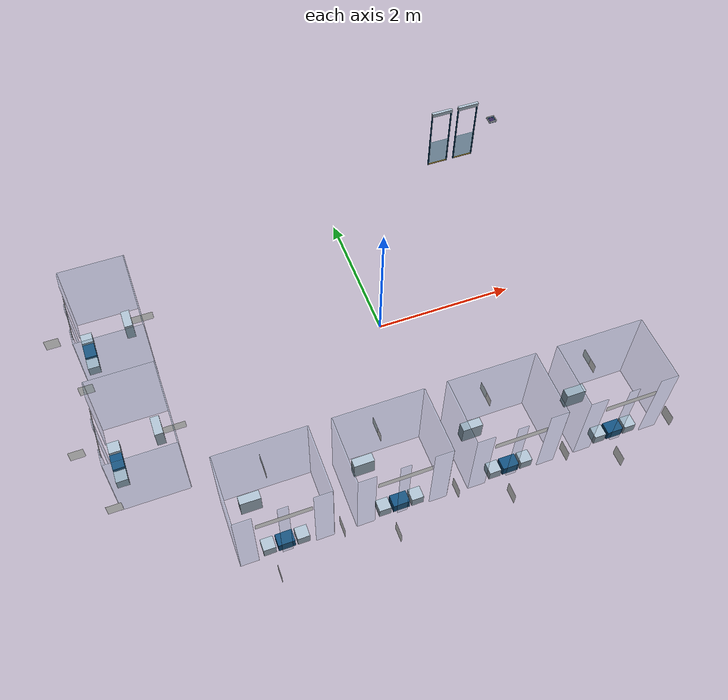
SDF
<sdf version="1.9">
 <world name="wafer_transport">
  <include>
   <uri>model://room_1_entry_door</uri>
   <name>room_1_entry_door</name>
   <pose>2.3386000000000005 2.7571999999999997 0.0 0 0 4.71238898038469</pose>
  </include>
  <include>
   <uri>model://room_1_exit_door</uri>
   <name>room_1_exit_door</name>
   <pose>1.8985999999999998 2.7571999999999997 0.0 0 0 4.71238898038469</pose>
  </include>
  <model name="room_5">
   <static>true</static>
   <link name="structure">
    <inertial>
     <mass>0.1</mass>
     <inertia>
      <ixx>0.00016666666666666672</ixx>
      <iyy>0.00016666666666666672</iyy>
      <izz>0.00016666666666666672</izz>
      <ixy>0</ixy>
      <ixz>0</ixz>
      <iyz>0</iyz>
     </inertia>
    </inertial>
    <visual name="glass_back">
     <pose>-3.2004 0.9144 0.6096 0 0 -1.5707963267948966</pose>
     <geometry><box><size>1.2192 0.012 1.2192</size></box></geometry>
     <material><ambient>.5 .75 .9 1</ambient><diffuse>.5 .75 .9 1</diffuse></material>
     <transparency>0.82</transparency>
    </visual>
    <collision name="glass_back_collision">
     <pose>-3.2004 0.9144 0.6096 0 0 -1.5707963267948966</pose>
     <geometry><box><size>1.2192 0.012 1.2192</size></box></geometry>
     <surface><friction><ode><mu>0.9</mu><mu2>0.9</mu2></ode></friction></surface>
    </collision>
    <visual name="glass_left">
     <pose>-3.6576 1.524 0.6096 0 0 -1.5707963267948966</pose>
     <geometry><box><size>0.012 0.9144 1.2192</size></box></geometry>
     <material><ambient>.5 .75 .9 1</ambient><diffuse>.5 .75 .9 1</diffuse></material>
     <transparency>0.82</transparency>
    </visual>
    <collision name="glass_left_collision">
     <pose>-3.6576 1.524 0.6096 0 0 -1.5707963267948966</pose>
     <geometry><box><size>0.012 0.9144 1.2192</size></box></geometry>
     <surface><friction><ode><mu>0.9</mu><mu2>0.9</mu2></ode></friction></surface>
    </collision>
    <visual name="glass_right">
     <pose>-3.6576 0.30479999999999996 0.6096 0 0 -1.5707963267948966</pose>
     <geometry><box><size>0.012 0.9144 1.2192</size></box></geometry>
     <material><ambient>.5 .75 .9 1</ambient><diffuse>.5 .75 .9 1</diffuse></material>
     <transparency>0.82</transparency>
    </visual>
    <collision name="glass_right_collision">
     <pose>-3.6576 0.30479999999999996 0.6096 0 0 -1.5707963267948966</pose>
     <geometry><box><size>0.012 0.9144 1.2192</size></box></geometry>
     <surface><friction><ode><mu>0.9</mu><mu2>0.9</mu2></ode></friction></surface>
    </collision>
    <visual name="glass_front_0">
     <pose>-4.1148 1.4054 0.6096 0 0 -1.5707963267948966</pose>
     <geometry><box><size>0.23720000000000002 0.012 1.2192</size></box></geometry>
     <material><ambient>.5 .75 .9 1</ambient><diffuse>.5 .75 .9 1</diffuse></material>
     <transparency>0.82</transparency>
    </visual>
    <collision name="glass_front_0_collision">
     <pose>-4.1148 1.4054 0.6096 0 0 -1.5707963267948966</pose>
     <geometry><box><size>0.23720000000000002 0.012 1.2192</size></box></geometry>
     <surface><friction><ode><mu>0.9</mu><mu2>0.9</mu2></ode></friction></surface>
    </collision>
    <visual name="glass_front_1">
     <pose>-4.1148 0.9144 0.6096 0 0 -1.5707963267948966</pose>
     <geometry><box><size>0.1352 0.012 1.2192</size></box></geometry>
     <material><ambient>.5 .75 .9 1</ambient><diffuse>.5 .75 .9 1</diffuse></material>
     <transparency>0.82</transparency>
    </visual>
    <collision name="glass_front_1_collision">
     <pose>-4.1148 0.9144 0.6096 0 0 -1.5707963267948966</pose>
     <geometry><box><size>0.1352 0.012 1.2192</size></box></geometry>
     <surface><friction><ode><mu>0.9</mu><mu2>0.9</mu2></ode></friction></surface>
    </collision>
    <visual name="glass_front_2">
     <pose>-4.1148 0.42339999999999994 0.6096 0 0 -1.5707963267948966</pose>
     <geometry><box><size>0.23720000000000002 0.012 1.2192</size></box></geometry>
     <material><ambient>.5 .75 .9 1</ambient><diffuse>.5 .75 .9 1</diffuse></material>
     <transparency>0.82</transparency>
    </visual>
    <collision name="glass_front_2_collision">
     <pose>-4.1148 0.42339999999999994 0.6096 0 0 -1.5707963267948966</pose>
     <geometry><box><size>0.23720000000000002 0.012 1.2192</size></box></geometry>
     <surface><friction><ode><mu>0.9</mu><mu2>0.9</mu2></ode></friction></surface>
    </collision>
    <visual name="process_stage">
     <pose>-4.0148 0.9144 0.077 0 0 -1.5707963267948966</pose>
     <geometry><box><size>0.22 0.16 0.154</size></box></geometry>
     <material><ambient>0.06 0.30 0.48 1</ambient><diffuse>0.06 0.30 0.48 1</diffuse></material>
    </visual>
    <collision name="process_stage_collision">
     <pose>-4.0148 0.9144 0.077 0 0 -1.5707963267948966</pose>
     <geometry><box><size>0.22 0.16 0.154</size></box></geometry>
     <surface><friction><ode><mu>0.9</mu><mu2>0.9</mu2></ode></friction></surface>
    </collision>
    <visual name="entry_handoff">
     <pose>-4.0148 1.1344 0.077 0 0 -1.5707963267948966</pose>
     <geometry><box><size>0.16 0.16 0.154</size></box></geometry>
     <material><ambient>0.65 0.72 0.78 1</ambient><diffuse>0.65 0.72 0.78 1</diffuse></material>
    </visual>
    <collision name="entry_handoff_collision">
     <pose>-4.0148 1.1344 0.077 0 0 -1.5707963267948966</pose>
     <geometry><box><size>0.16 0.16 0.154</size></box></geometry>
     <surface><friction><ode><mu>0.9</mu><mu2>0.9</mu2></ode></friction></surface>
    </collision>
    <visual name="exit_handoff">
     <pose>-4.0148 0.6944 0.077 0 0 -1.5707963267948966</pose>
     <geometry><box><size>0.16 0.16 0.154</size></box></geometry>
     <material><ambient>0.65 0.72 0.78 1</ambient><diffuse>0.65 0.72 0.78 1</diffuse></material>
    </visual>
    <collision name="exit_handoff_collision">
     <pose>-4.0148 0.6944 0.077 0 0 -1.5707963267948966</pose>
     <geometry><box><size>0.16 0.16 0.154</size></box></geometry>
     <surface><friction><ode><mu>0.9</mu><mu2>0.9</mu2></ode></friction></surface>
    </collision>
    <visual name="equipment">
     <pose>-3.4076 1.1844000000000001 0.14 0 0 -1.5707963267948966</pose>
     <geometry><box><size>0.28 0.12 0.28</size></box></geometry>
     <material><ambient>0.65 0.72 0.78 1</ambient><diffuse>0.65 0.72 0.78 1</diffuse></material>
    </visual>
    <collision name="equipment_collision">
     <pose>-3.4076 1.1844000000000001 0.14 0 0 -1.5707963267948966</pose>
     <geometry><box><size>0.28 0.12 0.28</size></box></geometry>
     <surface><friction><ode><mu>0.9</mu><mu2>0.9</mu2></ode></friction></surface>
    </collision>
    <visual name="entry_apriltag">
     <pose>-4.475 1.1144 0.27 1.5707963267948966 0 3.141592653589793</pose>
     <geometry><plane><normal>0 0 1</normal><size>0.2 0.2</size></plane></geometry>
     <material>
      <ambient>1 1 1 1</ambient>
      <diffuse>1 1 1 1</diffuse>
      <emissive>0.35 0.35 0.35 1</emissive>
      <pbr>
       <metal>
        <albedo_map>../textures/room_5_entry_apriltag.png</albedo_map>
        <metalness>0</metalness>
        <roughness>1</roughness>
       </metal>
      </pbr>
     </material>
     <cast_shadows>false</cast_shadows>
    </visual>
    <visual name="exit_apriltag">
     <pose>-4.1701999999999995 0.2144 0.27 1.5707963267948966 0 3.141592653589793</pose>
     <geometry><plane><normal>0 0 1</normal><size>0.2 0.2</size></plane></geometry>
     <material>
      <ambient>1 1 1 1</ambient>
      <diffuse>1 1 1 1</diffuse>
      <emissive>0.35 0.35 0.35 1</emissive>
      <pbr>
       <metal>
        <albedo_map>../textures/room_5_exit_apriltag.png</albedo_map>
        <metalness>0</metalness>
        <roughness>1</roughness>
       </metal>
      </pbr>
     </material>
     <cast_shadows>false</cast_shadows>
    </visual>
    <visual name="room_label">
     <pose>-4.1238 0.9144 0.98 1.5707963267948966 0 -1.5707963267948966</pose>
     <geometry><plane><normal>0 0 1</normal><size>0.7 0.1</size></plane></geometry>
     <material>
      <ambient>1 1 1 1</ambient>
      <diffuse>1 1 1 1</diffuse>
      <emissive>0.35 0.35 0.35 1</emissive>
      <pbr>
       <metal>
        <albedo_map>../textures/room_5_label.png</albedo_map>
        <metalness>0</metalness>
        <roughness>1</roughness>
       </metal>
      </pbr>
     </material>
     <cast_shadows>false</cast_shadows>
    </visual>
    <visual name="microalchemy_logo">
     <pose>-3.1904 0.9144 0.55 1.5707963267948966 0 0.0</pose>
     <geometry><plane><normal>0 0 1</normal><size>0.3 0.15</size></plane></geometry>
     <material>
      <ambient>1 1 1 1</ambient>
      <diffuse>1 1 1 1</diffuse>
      <emissive>0.35 0.35 0.35 1</emissive>
      <pbr>
       <metal>
        <albedo_map>../textures/microalchemy_logo.png</albedo_map>
        <metalness>0</metalness>
        <roughness>1</roughness>
       </metal>
      </pbr>
     </material>
     <cast_shadows>false</cast_shadows>
    </visual>
   </link>
  </model>
  <model name="room_6">
   <static>true</static>
   <link name="structure">
    <inertial>
     <mass>0.1</mass>
     <inertia>
      <ixx>0.00016666666666666672</ixx>
      <iyy>0.00016666666666666672</iyy>
      <izz>0.00016666666666666672</izz>
      <ixy>0</ixy>
      <ixz>0</ixz>
      <iyz>0</iyz>
     </inertia>
    </inertial>
    <visual name="glass_back">
     <pose>-3.2004 -0.9144 0.6096 0 0 -1.5707963267948966</pose>
     <geometry><box><size>1.2192 0.012 1.2192</size></box></geometry>
     <material><ambient>.5 .75 .9 1</ambient><diffuse>.5 .75 .9 1</diffuse></material>
     <transparency>0.82</transparency>
    </visual>
    <collision name="glass_back_collision">
     <pose>-3.2004 -0.9144 0.6096 0 0 -1.5707963267948966</pose>
     <geometry><box><size>1.2192 0.012 1.2192</size></box></geometry>
     <surface><friction><ode><mu>0.9</mu><mu2>0.9</mu2></ode></friction></surface>
    </collision>
    <visual name="glass_left">
     <pose>-3.6576 -0.30479999999999996 0.6096 0 0 -1.5707963267948966</pose>
     <geometry><box><size>0.012 0.9144 1.2192</size></box></geometry>
     <material><ambient>.5 .75 .9 1</ambient><diffuse>.5 .75 .9 1</diffuse></material>
     <transparency>0.82</transparency>
    </visual>
    <collision name="glass_left_collision">
     <pose>-3.6576 -0.30479999999999996 0.6096 0 0 -1.5707963267948966</pose>
     <geometry><box><size>0.012 0.9144 1.2192</size></box></geometry>
     <surface><friction><ode><mu>0.9</mu><mu2>0.9</mu2></ode></friction></surface>
    </collision>
    <visual name="glass_right">
     <pose>-3.6576 -1.524 0.6096 0 0 -1.5707963267948966</pose>
     <geometry><box><size>0.012 0.9144 1.2192</size></box></geometry>
     <material><ambient>.5 .75 .9 1</ambient><diffuse>.5 .75 .9 1</diffuse></material>
     <transparency>0.82</transparency>
    </visual>
    <collision name="glass_right_collision">
     <pose>-3.6576 -1.524 0.6096 0 0 -1.5707963267948966</pose>
     <geometry><box><size>0.012 0.9144 1.2192</size></box></geometry>
     <surface><friction><ode><mu>0.9</mu><mu2>0.9</mu2></ode></friction></surface>
    </collision>
    <visual name="glass_front_0">
     <pose>-4.1148 -0.42340000000000005 0.6096 0 0 -1.5707963267948966</pose>
     <geometry><box><size>0.23720000000000002 0.012 1.2192</size></box></geometry>
     <material><ambient>.5 .75 .9 1</ambient><diffuse>.5 .75 .9 1</diffuse></material>
     <transparency>0.82</transparency>
    </visual>
    <collision name="glass_front_0_collision">
     <pose>-4.1148 -0.42340000000000005 0.6096 0 0 -1.5707963267948966</pose>
     <geometry><box><size>0.23720000000000002 0.012 1.2192</size></box></geometry>
     <surface><friction><ode><mu>0.9</mu><mu2>0.9</mu2></ode></friction></surface>
    </collision>
    <visual name="glass_front_1">
     <pose>-4.1148 -0.9144 0.6096 0 0 -1.5707963267948966</pose>
     <geometry><box><size>0.1352 0.012 1.2192</size></box></geometry>
     <material><ambient>.5 .75 .9 1</ambient><diffuse>.5 .75 .9 1</diffuse></material>
     <transparency>0.82</transparency>
    </visual>
    <collision name="glass_front_1_collision">
     <pose>-4.1148 -0.9144 0.6096 0 0 -1.5707963267948966</pose>
     <geometry><box><size>0.1352 0.012 1.2192</size></box></geometry>
     <surface><friction><ode><mu>0.9</mu><mu2>0.9</mu2></ode></friction></surface>
    </collision>
    <visual name="glass_front_2">
     <pose>-4.1148 -1.4054 0.6096 0 0 -1.5707963267948966</pose>
     <geometry><box><size>0.23720000000000002 0.012 1.2192</size></box></geometry>
     <material><ambient>.5 .75 .9 1</ambient><diffuse>.5 .75 .9 1</diffuse></material>
     <transparency>0.82</transparency>
    </visual>
    <collision name="glass_front_2_collision">
     <pose>-4.1148 -1.4054 0.6096 0 0 -1.5707963267948966</pose>
     <geometry><box><size>0.23720000000000002 0.012 1.2192</size></box></geometry>
     <surface><friction><ode><mu>0.9</mu><mu2>0.9</mu2></ode></friction></surface>
    </collision>
    <visual name="process_stage">
     <pose>-4.0148 -0.9144 0.077 0 0 -1.5707963267948966</pose>
     <geometry><box><size>0.22 0.16 0.154</size></box></geometry>
     <material><ambient>0.06 0.30 0.48 1</ambient><diffuse>0.06 0.30 0.48 1</diffuse></material>
    </visual>
    <collision name="process_stage_collision">
     <pose>-4.0148 -0.9144 0.077 0 0 -1.5707963267948966</pose>
     <geometry><box><size>0.22 0.16 0.154</size></box></geometry>
     <surface><friction><ode><mu>0.9</mu><mu2>0.9</mu2></ode></friction></surface>
    </collision>
    <visual name="entry_handoff">
     <pose>-4.0148 -0.6944 0.077 0 0 -1.5707963267948966</pose>
     <geometry><box><size>0.16 0.16 0.154</size></box></geometry>
     <material><ambient>0.65 0.72 0.78 1</ambient><diffuse>0.65 0.72 0.78 1</diffuse></material>
    </visual>
    <collision name="entry_handoff_collision">
     <pose>-4.0148 -0.6944 0.077 0 0 -1.5707963267948966</pose>
     <geometry><box><size>0.16 0.16 0.154</size></box></geometry>
     <surface><friction><ode><mu>0.9</mu><mu2>0.9</mu2></ode></friction></surface>
    </collision>
    <visual name="exit_handoff">
     <pose>-4.0148 -1.1344 0.077 0 0 -1.5707963267948966</pose>
     <geometry><box><size>0.16 0.16 0.154</size></box></geometry>
     <material><ambient>0.65 0.72 0.78 1</ambient><diffuse>0.65 0.72 0.78 1</diffuse></material>
    </visual>
    <collision name="exit_handoff_collision">
     <pose>-4.0148 -1.1344 0.077 0 0 -1.5707963267948966</pose>
     <geometry><box><size>0.16 0.16 0.154</size></box></geometry>
     <surface><friction><ode><mu>0.9</mu><mu2>0.9</mu2></ode></friction></surface>
    </collision>
    <visual name="equipment">
     <pose>-3.4076 -0.6444 0.14 0 0 -1.5707963267948966</pose>
     <geometry><box><size>0.28 0.12 0.28</size></box></geometry>
     <material><ambient>0.65 0.72 0.78 1</ambient><diffuse>0.65 0.72 0.78 1</diffuse></material>
    </visual>
    <collision name="equipment_collision">
     <pose>-3.4076 -0.6444 0.14 0 0 -1.5707963267948966</pose>
     <geometry><box><size>0.28 0.12 0.28</size></box></geometry>
     <surface><friction><ode><mu>0.9</mu><mu2>0.9</mu2></ode></friction></surface>
    </collision>
    <visual name="entry_apriltag">
     <pose>-4.475 -0.7144 0.27 1.5707963267948966 0 3.141592653589793</pose>
     <geometry><plane><normal>0 0 1</normal><size>0.2 0.2</size></plane></geometry>
     <material>
      <ambient>1 1 1 1</ambient>
      <diffuse>1 1 1 1</diffuse>
      <emissive>0.35 0.35 0.35 1</emissive>
      <pbr>
       <metal>
        <albedo_map>../textures/room_6_entry_apriltag.png</albedo_map>
        <metalness>0</metalness>
        <roughness>1</roughness>
       </metal>
      </pbr>
     </material>
     <cast_shadows>false</cast_shadows>
    </visual>
    <visual name="exit_apriltag">
     <pose>-4.1701999999999995 -1.6143999999999998 0.27 1.5707963267948966 0 3.141592653589793</pose>
     <geometry><plane><normal>0 0 1</normal><size>0.2 0.2</size></plane></geometry>
     <material>
      <ambient>1 1 1 1</ambient>
      <diffuse>1 1 1 1</diffuse>
      <emissive>0.35 0.35 0.35 1</emissive>
      <pbr>
       <metal>
        <albedo_map>../textures/room_6_exit_apriltag.png</albedo_map>
        <metalness>0</metalness>
        <roughness>1</roughness>
       </metal>
      </pbr>
     </material>
     <cast_shadows>false</cast_shadows>
    </visual>
    <visual name="room_label">
     <pose>-4.1238 -0.9144 0.98 1.5707963267948966 0 -1.5707963267948966</pose>
     <geometry><plane><normal>0 0 1</normal><size>0.7 0.1</size></plane></geometry>
     <material>
      <ambient>1 1 1 1</ambient>
      <diffuse>1 1 1 1</diffuse>
      <emissive>0.35 0.35 0.35 1</emissive>
      <pbr>
       <metal>
        <albedo_map>../textures/room_6_label.png</albedo_map>
        <metalness>0</metalness>
        <roughness>1</roughness>
       </metal>
      </pbr>
     </material>
     <cast_shadows>false</cast_shadows>
    </visual>
    <visual name="microalchemy_logo">
     <pose>-3.1904 -0.9144 0.55 1.5707963267948966 0 0.0</pose>
     <geometry><plane><normal>0 0 1</normal><size>0.3 0.15</size></plane></geometry>
     <material>
      <ambient>1 1 1 1</ambient>
      <diffuse>1 1 1 1</diffuse>
      <emissive>0.35 0.35 0.35 1</emissive>
      <pbr>
       <metal>
        <albedo_map>../textures/microalchemy_logo.png</albedo_map>
        <metalness>0</metalness>
        <roughness>1</roughness>
       </metal>
      </pbr>
     </material>
     <cast_shadows>false</cast_shadows>
    </visual>
   </link>
  </model>
  <model name="room_7">
   <static>true</static>
   <link name="structure">
    <inertial>
     <mass>0.1</mass>
     <inertia>
      <ixx>0.00016666666666666672</ixx>
      <iyy>0.00016666666666666672</iyy>
      <izz>0.00016666666666666672</izz>
      <ixy>0</ixy>
      <ixz>0</ixz>
      <iyz>0</iyz>
     </inertia>
    </inertial>
    <visual name="glass_back">
     <pose>-2.286 -1.8427999999999998 0.6096 0 0 0.0</pose>
     <geometry><box><size>1.2192 0.012 1.2192</size></box></geometry>
     <material><ambient>.5 .75 .9 1</ambient><diffuse>.5 .75 .9 1</diffuse></material>
     <transparency>0.82</transparency>
    </visual>
    <collision name="glass_back_collision">
     <pose>-2.286 -1.8427999999999998 0.6096 0 0 0.0</pose>
     <geometry><box><size>1.2192 0.012 1.2192</size></box></geometry>
     <surface><friction><ode><mu>0.9</mu><mu2>0.9</mu2></ode></friction></surface>
    </collision>
    <visual name="glass_left">
     <pose>-2.8956 -2.3 0.6096 0 0 0.0</pose>
     <geometry><box><size>0.012 0.9144 1.2192</size></box></geometry>
     <material><ambient>.5 .75 .9 1</ambient><diffuse>.5 .75 .9 1</diffuse></material>
     <transparency>0.82</transparency>
    </visual>
    <collision name="glass_left_collision">
     <pose>-2.8956 -2.3 0.6096 0 0 0.0</pose>
     <geometry><box><size>0.012 0.9144 1.2192</size></box></geometry>
     <surface><friction><ode><mu>0.9</mu><mu2>0.9</mu2></ode></friction></surface>
    </collision>
    <visual name="glass_right">
     <pose>-1.6764000000000001 -2.3 0.6096 0 0 0.0</pose>
     <geometry><box><size>0.012 0.9144 1.2192</size></box></geometry>
     <material><ambient>.5 .75 .9 1</ambient><diffuse>.5 .75 .9 1</diffuse></material>
     <transparency>0.82</transparency>
    </visual>
    <collision name="glass_right_collision">
     <pose>-1.6764000000000001 -2.3 0.6096 0 0 0.0</pose>
     <geometry><box><size>0.012 0.9144 1.2192</size></box></geometry>
     <surface><friction><ode><mu>0.9</mu><mu2>0.9</mu2></ode></friction></surface>
    </collision>
    <visual name="glass_front_0">
     <pose>-2.777 -2.7571999999999997 0.6096 0 0 0.0</pose>
     <geometry><box><size>0.23720000000000002 0.012 1.2192</size></box></geometry>
     <material><ambient>.5 .75 .9 1</ambient><diffuse>.5 .75 .9 1</diffuse></material>
     <transparency>0.82</transparency>
    </visual>
    <collision name="glass_front_0_collision">
     <pose>-2.777 -2.7571999999999997 0.6096 0 0 0.0</pose>
     <geometry><box><size>0.23720000000000002 0.012 1.2192</size></box></geometry>
     <surface><friction><ode><mu>0.9</mu><mu2>0.9</mu2></ode></friction></surface>
    </collision>
    <visual name="glass_front_1">
     <pose>-2.286 -2.7571999999999997 0.6096 0 0 0.0</pose>
     <geometry><box><size>0.1352 0.012 1.2192</size></box></geometry>
     <material><ambient>.5 .75 .9 1</ambient><diffuse>.5 .75 .9 1</diffuse></material>
     <transparency>0.82</transparency>
    </visual>
    <collision name="glass_front_1_collision">
     <pose>-2.286 -2.7571999999999997 0.6096 0 0 0.0</pose>
     <geometry><box><size>0.1352 0.012 1.2192</size></box></geometry>
     <surface><friction><ode><mu>0.9</mu><mu2>0.9</mu2></ode></friction></surface>
    </collision>
    <visual name="glass_front_2">
     <pose>-1.795 -2.7571999999999997 0.6096 0 0 0.0</pose>
     <geometry><box><size>0.23720000000000002 0.012 1.2192</size></box></geometry>
     <material><ambient>.5 .75 .9 1</ambient><diffuse>.5 .75 .9 1</diffuse></material>
     <transparency>0.82</transparency>
    </visual>
    <collision name="glass_front_2_collision">
     <pose>-1.795 -2.7571999999999997 0.6096 0 0 0.0</pose>
     <geometry><box><size>0.23720000000000002 0.012 1.2192</size></box></geometry>
     <surface><friction><ode><mu>0.9</mu><mu2>0.9</mu2></ode></friction></surface>
    </collision>
    <visual name="process_stage">
     <pose>-2.286 -2.6571999999999996 0.077 0 0 0.0</pose>
     <geometry><box><size>0.22 0.16 0.154</size></box></geometry>
     <material><ambient>0.06 0.30 0.48 1</ambient><diffuse>0.06 0.30 0.48 1</diffuse></material>
    </visual>
    <collision name="process_stage_collision">
     <pose>-2.286 -2.6571999999999996 0.077 0 0 0.0</pose>
     <geometry><box><size>0.22 0.16 0.154</size></box></geometry>
     <surface><friction><ode><mu>0.9</mu><mu2>0.9</mu2></ode></friction></surface>
    </collision>
    <visual name="entry_handoff">
     <pose>-2.5060000000000002 -2.6571999999999996 0.077 0 0 0.0</pose>
     <geometry><box><size>0.16 0.16 0.154</size></box></geometry>
     <material><ambient>0.65 0.72 0.78 1</ambient><diffuse>0.65 0.72 0.78 1</diffuse></material>
    </visual>
    <collision name="entry_handoff_collision">
     <pose>-2.5060000000000002 -2.6571999999999996 0.077 0 0 0.0</pose>
     <geometry><box><size>0.16 0.16 0.154</size></box></geometry>
     <surface><friction><ode><mu>0.9</mu><mu2>0.9</mu2></ode></friction></surface>
    </collision>
    <visual name="exit_handoff">
     <pose>-2.066 -2.6571999999999996 0.077 0 0 0.0</pose>
     <geometry><box><size>0.16 0.16 0.154</size></box></geometry>
     <material><ambient>0.65 0.72 0.78 1</ambient><diffuse>0.65 0.72 0.78 1</diffuse></material>
    </visual>
    <collision name="exit_handoff_collision">
     <pose>-2.066 -2.6571999999999996 0.077 0 0 0.0</pose>
     <geometry><box><size>0.16 0.16 0.154</size></box></geometry>
     <surface><friction><ode><mu>0.9</mu><mu2>0.9</mu2></ode></friction></surface>
    </collision>
    <visual name="equipment">
     <pose>-2.556 -2.05 0.14 0 0 0.0</pose>
     <geometry><box><size>0.28 0.12 0.28</size></box></geometry>
     <material><ambient>0.65 0.72 0.78 1</ambient><diffuse>0.65 0.72 0.78 1</diffuse></material>
    </visual>
    <collision name="equipment_collision">
     <pose>-2.556 -2.05 0.14 0 0 0.0</pose>
     <geometry><box><size>0.28 0.12 0.28</size></box></geometry>
     <surface><friction><ode><mu>0.9</mu><mu2>0.9</mu2></ode></friction></surface>
    </collision>
    <visual name="entry_apriltag">
     <pose>-2.486 -3.1174 0.27 1.5707963267948966 0 4.71238898038469</pose>
     <geometry><plane><normal>0 0 1</normal><size>0.2 0.2</size></plane></geometry>
     <material>
      <ambient>1 1 1 1</ambient>
      <diffuse>1 1 1 1</diffuse>
      <emissive>0.35 0.35 0.35 1</emissive>
      <pbr>
       <metal>
        <albedo_map>../textures/room_7_entry_apriltag.png</albedo_map>
        <metalness>0</metalness>
        <roughness>1</roughness>
       </metal>
      </pbr>
     </material>
     <cast_shadows>false</cast_shadows>
    </visual>
    <visual name="exit_apriltag">
     <pose>-1.586 -2.8125999999999998 0.27 1.5707963267948966 0 4.71238898038469</pose>
     <geometry><plane><normal>0 0 1</normal><size>0.2 0.2</size></plane></geometry>
     <material>
      <ambient>1 1 1 1</ambient>
      <diffuse>1 1 1 1</diffuse>
      <emissive>0.35 0.35 0.35 1</emissive>
      <pbr>
       <metal>
        <albedo_map>../textures/room_7_exit_apriltag.png</albedo_map>
        <metalness>0</metalness>
        <roughness>1</roughness>
       </metal>
      </pbr>
     </material>
     <cast_shadows>false</cast_shadows>
    </visual>
    <visual name="room_label">
     <pose>-2.286 -2.7662 0.98 1.5707963267948966 0 0.0</pose>
     <geometry><plane><normal>0 0 1</normal><size>0.7 0.1</size></plane></geometry>
     <material>
      <ambient>1 1 1 1</ambient>
      <diffuse>1 1 1 1</diffuse>
      <emissive>0.35 0.35 0.35 1</emissive>
      <pbr>
       <metal>
        <albedo_map>../textures/room_7_label.png</albedo_map>
        <metalness>0</metalness>
        <roughness>1</roughness>
       </metal>
      </pbr>
     </material>
     <cast_shadows>false</cast_shadows>
    </visual>
    <visual name="microalchemy_logo">
     <pose>-2.286 -1.8327999999999998 0.55 1.5707963267948966 0 1.5707963267948966</pose>
     <geometry><plane><normal>0 0 1</normal><size>0.3 0.15</size></plane></geometry>
     <material>
      <ambient>1 1 1 1</ambient>
      <diffuse>1 1 1 1</diffuse>
      <emissive>0.35 0.35 0.35 1</emissive>
      <pbr>
       <metal>
        <albedo_map>../textures/microalchemy_logo.png</albedo_map>
        <metalness>0</metalness>
        <roughness>1</roughness>
       </metal>
      </pbr>
     </material>
     <cast_shadows>false</cast_shadows>
    </visual>
   </link>
  </model>
  <model name="room_8">
   <static>true</static>
   <link name="structure">
    <inertial>
     <mass>0.1</mass>
     <inertia>
      <ixx>0.00016666666666666672</ixx>
      <iyy>0.00016666666666666672</iyy>
      <izz>0.00016666666666666672</izz>
      <ixy>0</ixy>
      <ixz>0</ixz>
      <iyz>0</iyz>
     </inertia>
    </inertial>
    <visual name="glass_back">
     <pose>-0.762 -1.8427999999999998 0.6096 0 0 0.0</pose>
     <geometry><box><size>1.2192 0.012 1.2192</size></box></geometry>
     <material><ambient>.5 .75 .9 1</ambient><diffuse>.5 .75 .9 1</diffuse></material>
     <transparency>0.82</transparency>
    </visual>
    <collision name="glass_back_collision">
     <pose>-0.762 -1.8427999999999998 0.6096 0 0 0.0</pose>
     <geometry><box><size>1.2192 0.012 1.2192</size></box></geometry>
     <surface><friction><ode><mu>0.9</mu><mu2>0.9</mu2></ode></friction></surface>
    </collision>
    <visual name="glass_left">
     <pose>-1.3716 -2.3 0.6096 0 0 0.0</pose>
     <geometry><box><size>0.012 0.9144 1.2192</size></box></geometry>
     <material><ambient>.5 .75 .9 1</ambient><diffuse>.5 .75 .9 1</diffuse></material>
     <transparency>0.82</transparency>
    </visual>
    <collision name="glass_left_collision">
     <pose>-1.3716 -2.3 0.6096 0 0 0.0</pose>
     <geometry><box><size>0.012 0.9144 1.2192</size></box></geometry>
     <surface><friction><ode><mu>0.9</mu><mu2>0.9</mu2></ode></friction></surface>
    </collision>
    <visual name="glass_right">
     <pose>-0.15239999999999998 -2.3 0.6096 0 0 0.0</pose>
     <geometry><box><size>0.012 0.9144 1.2192</size></box></geometry>
     <material><ambient>.5 .75 .9 1</ambient><diffuse>.5 .75 .9 1</diffuse></material>
     <transparency>0.82</transparency>
    </visual>
    <collision name="glass_right_collision">
     <pose>-0.15239999999999998 -2.3 0.6096 0 0 0.0</pose>
     <geometry><box><size>0.012 0.9144 1.2192</size></box></geometry>
     <surface><friction><ode><mu>0.9</mu><mu2>0.9</mu2></ode></friction></surface>
    </collision>
    <visual name="glass_front_0">
     <pose>-1.2530000000000001 -2.7571999999999997 0.6096 0 0 0.0</pose>
     <geometry><box><size>0.23720000000000002 0.012 1.2192</size></box></geometry>
     <material><ambient>.5 .75 .9 1</ambient><diffuse>.5 .75 .9 1</diffuse></material>
     <transparency>0.82</transparency>
    </visual>
    <collision name="glass_front_0_collision">
     <pose>-1.2530000000000001 -2.7571999999999997 0.6096 0 0 0.0</pose>
     <geometry><box><size>0.23720000000000002 0.012 1.2192</size></box></geometry>
     <surface><friction><ode><mu>0.9</mu><mu2>0.9</mu2></ode></friction></surface>
    </collision>
    <visual name="glass_front_1">
     <pose>-0.762 -2.7571999999999997 0.6096 0 0 0.0</pose>
     <geometry><box><size>0.1352 0.012 1.2192</size></box></geometry>
     <material><ambient>.5 .75 .9 1</ambient><diffuse>.5 .75 .9 1</diffuse></material>
     <transparency>0.82</transparency>
    </visual>
    <collision name="glass_front_1_collision">
     <pose>-0.762 -2.7571999999999997 0.6096 0 0 0.0</pose>
     <geometry><box><size>0.1352 0.012 1.2192</size></box></geometry>
     <surface><friction><ode><mu>0.9</mu><mu2>0.9</mu2></ode></friction></surface>
    </collision>
    <visual name="glass_front_2">
     <pose>-0.271 -2.7571999999999997 0.6096 0 0 0.0</pose>
     <geometry><box><size>0.23720000000000002 0.012 1.2192</size></box></geometry>
     <material><ambient>.5 .75 .9 1</ambient><diffuse>.5 .75 .9 1</diffuse></material>
     <transparency>0.82</transparency>
    </visual>
    <collision name="glass_front_2_collision">
     <pose>-0.271 -2.7571999999999997 0.6096 0 0 0.0</pose>
     <geometry><box><size>0.23720000000000002 0.012 1.2192</size></box></geometry>
     <surface><friction><ode><mu>0.9</mu><mu2>0.9</mu2></ode></friction></surface>
    </collision>
    <visual name="process_stage">
     <pose>-0.762 -2.6571999999999996 0.077 0 0 0.0</pose>
     <geometry><box><size>0.22 0.16 0.154</size></box></geometry>
     <material><ambient>0.06 0.30 0.48 1</ambient><diffuse>0.06 0.30 0.48 1</diffuse></material>
    </visual>
    <collision name="process_stage_collision">
     <pose>-0.762 -2.6571999999999996 0.077 0 0 0.0</pose>
     <geometry><box><size>0.22 0.16 0.154</size></box></geometry>
     <surface><friction><ode><mu>0.9</mu><mu2>0.9</mu2></ode></friction></surface>
    </collision>
    <visual name="entry_handoff">
     <pose>-0.982 -2.6571999999999996 0.077 0 0 0.0</pose>
     <geometry><box><size>0.16 0.16 0.154</size></box></geometry>
     <material><ambient>0.65 0.72 0.78 1</ambient><diffuse>0.65 0.72 0.78 1</diffuse></material>
    </visual>
    <collision name="entry_handoff_collision">
     <pose>-0.982 -2.6571999999999996 0.077 0 0 0.0</pose>
     <geometry><box><size>0.16 0.16 0.154</size></box></geometry>
     <surface><friction><ode><mu>0.9</mu><mu2>0.9</mu2></ode></friction></surface>
    </collision>
    <visual name="exit_handoff">
     <pose>-0.542 -2.6571999999999996 0.077 0 0 0.0</pose>
     <geometry><box><size>0.16 0.16 0.154</size></box></geometry>
     <material><ambient>0.65 0.72 0.78 1</ambient><diffuse>0.65 0.72 0.78 1</diffuse></material>
    </visual>
    <collision name="exit_handoff_collision">
     <pose>-0.542 -2.6571999999999996 0.077 0 0 0.0</pose>
     <geometry><box><size>0.16 0.16 0.154</size></box></geometry>
     <surface><friction><ode><mu>0.9</mu><mu2>0.9</mu2></ode></friction></surface>
    </collision>
    <visual name="equipment">
     <pose>-1.032 -2.05 0.14 0 0 0.0</pose>
     <geometry><box><size>0.28 0.12 0.28</size></box></geometry>
     <material><ambient>0.65 0.72 0.78 1</ambient><diffuse>0.65 0.72 0.78 1</diffuse></material>
    </visual>
    <collision name="equipment_collision">
     <pose>-1.032 -2.05 0.14 0 0 0.0</pose>
     <geometry><box><size>0.28 0.12 0.28</size></box></geometry>
     <surface><friction><ode><mu>0.9</mu><mu2>0.9</mu2></ode></friction></surface>
    </collision>
    <visual name="entry_apriltag">
     <pose>-0.962 -3.1174 0.27 1.5707963267948966 0 4.71238898038469</pose>
     <geometry><plane><normal>0 0 1</normal><size>0.2 0.2</size></plane></geometry>
     <material>
      <ambient>1 1 1 1</ambient>
      <diffuse>1 1 1 1</diffuse>
      <emissive>0.35 0.35 0.35 1</emissive>
      <pbr>
       <metal>
        <albedo_map>../textures/room_8_entry_apriltag.png</albedo_map>
        <metalness>0</metalness>
        <roughness>1</roughness>
       </metal>
      </pbr>
     </material>
     <cast_shadows>false</cast_shadows>
    </visual>
    <visual name="exit_apriltag">
     <pose>-0.062000000000000055 -2.8125999999999998 0.27 1.5707963267948966 0 4.71238898038469</pose>
     <geometry><plane><normal>0 0 1</normal><size>0.2 0.2</size></plane></geometry>
     <material>
      <ambient>1 1 1 1</ambient>
      <diffuse>1 1 1 1</diffuse>
      <emissive>0.35 0.35 0.35 1</emissive>
      <pbr>
       <metal>
        <albedo_map>../textures/room_8_exit_apriltag.png</albedo_map>
        <metalness>0</metalness>
        <roughness>1</roughness>
       </metal>
      </pbr>
     </material>
     <cast_shadows>false</cast_shadows>
    </visual>
    <visual name="room_label">
     <pose>-0.762 -2.7662 0.98 1.5707963267948966 0 0.0</pose>
     <geometry><plane><normal>0 0 1</normal><size>0.7 0.1</size></plane></geometry>
     <material>
      <ambient>1 1 1 1</ambient>
      <diffuse>1 1 1 1</diffuse>
      <emissive>0.35 0.35 0.35 1</emissive>
      <pbr>
       <metal>
        <albedo_map>../textures/room_8_label.png</albedo_map>
        <metalness>0</metalness>
        <roughness>1</roughness>
       </metal>
      </pbr>
     </material>
     <cast_shadows>false</cast_shadows>
    </visual>
    <visual name="microalchemy_logo">
     <pose>-0.762 -1.8327999999999998 0.55 1.5707963267948966 0 1.5707963267948966</pose>
     <geometry><plane><normal>0 0 1</normal><size>0.3 0.15</size></plane></geometry>
     <material>
      <ambient>1 1 1 1</ambient>
      <diffuse>1 1 1 1</diffuse>
      <emissive>0.35 0.35 0.35 1</emissive>
      <pbr>
       <metal>
        <albedo_map>../textures/microalchemy_logo.png</albedo_map>
        <metalness>0</metalness>
        <roughness>1</roughness>
       </metal>
      </pbr>
     </material>
     <cast_shadows>false</cast_shadows>
    </visual>
   </link>
  </model>
  <model name="room_9">
   <static>true</static>
   <link name="structure">
    <inertial>
     <mass>0.1</mass>
     <inertia>
      <ixx>0.00016666666666666672</ixx>
      <iyy>0.00016666666666666672</iyy>
      <izz>0.00016666666666666672</izz>
      <ixy>0</ixy>
      <ixz>0</ixz>
      <iyz>0</iyz>
     </inertia>
    </inertial>
    <visual name="glass_back">
     <pose>0.762 -1.8427999999999998 0.6096 0 0 0.0</pose>
     <geometry><box><size>1.2192 0.012 1.2192</size></box></geometry>
     <material><ambient>.5 .75 .9 1</ambient><diffuse>.5 .75 .9 1</diffuse></material>
     <transparency>0.82</transparency>
    </visual>
    <collision name="glass_back_collision">
     <pose>0.762 -1.8427999999999998 0.6096 0 0 0.0</pose>
     <geometry><box><size>1.2192 0.012 1.2192</size></box></geometry>
     <surface><friction><ode><mu>0.9</mu><mu2>0.9</mu2></ode></friction></surface>
    </collision>
    <visual name="glass_left">
     <pose>0.15239999999999998 -2.3 0.6096 0 0 0.0</pose>
     <geometry><box><size>0.012 0.9144 1.2192</size></box></geometry>
     <material><ambient>.5 .75 .9 1</ambient><diffuse>.5 .75 .9 1</diffuse></material>
     <transparency>0.82</transparency>
    </visual>
    <collision name="glass_left_collision">
     <pose>0.15239999999999998 -2.3 0.6096 0 0 0.0</pose>
     <geometry><box><size>0.012 0.9144 1.2192</size></box></geometry>
     <surface><friction><ode><mu>0.9</mu><mu2>0.9</mu2></ode></friction></surface>
    </collision>
    <visual name="glass_right">
     <pose>1.3716 -2.3 0.6096 0 0 0.0</pose>
     <geometry><box><size>0.012 0.9144 1.2192</size></box></geometry>
     <material><ambient>.5 .75 .9 1</ambient><diffuse>.5 .75 .9 1</diffuse></material>
     <transparency>0.82</transparency>
    </visual>
    <collision name="glass_right_collision">
     <pose>1.3716 -2.3 0.6096 0 0 0.0</pose>
     <geometry><box><size>0.012 0.9144 1.2192</size></box></geometry>
     <surface><friction><ode><mu>0.9</mu><mu2>0.9</mu2></ode></friction></surface>
    </collision>
    <visual name="glass_front_0">
     <pose>0.271 -2.7571999999999997 0.6096 0 0 0.0</pose>
     <geometry><box><size>0.23720000000000002 0.012 1.2192</size></box></geometry>
     <material><ambient>.5 .75 .9 1</ambient><diffuse>.5 .75 .9 1</diffuse></material>
     <transparency>0.82</transparency>
    </visual>
    <collision name="glass_front_0_collision">
     <pose>0.271 -2.7571999999999997 0.6096 0 0 0.0</pose>
     <geometry><box><size>0.23720000000000002 0.012 1.2192</size></box></geometry>
     <surface><friction><ode><mu>0.9</mu><mu2>0.9</mu2></ode></friction></surface>
    </collision>
    <visual name="glass_front_1">
     <pose>0.762 -2.7571999999999997 0.6096 0 0 0.0</pose>
     <geometry><box><size>0.1352 0.012 1.2192</size></box></geometry>
     <material><ambient>.5 .75 .9 1</ambient><diffuse>.5 .75 .9 1</diffuse></material>
     <transparency>0.82</transparency>
    </visual>
    <collision name="glass_front_1_collision">
     <pose>0.762 -2.7571999999999997 0.6096 0 0 0.0</pose>
     <geometry><box><size>0.1352 0.012 1.2192</size></box></geometry>
     <surface><friction><ode><mu>0.9</mu><mu2>0.9</mu2></ode></friction></surface>
    </collision>
    <visual name="glass_front_2">
     <pose>1.2530000000000001 -2.7571999999999997 0.6096 0 0 0.0</pose>
     <geometry><box><size>0.23720000000000002 0.012 1.2192</size></box></geometry>
     <material><ambient>.5 .75 .9 1</ambient><diffuse>.5 .75 .9 1</diffuse></material>
     <transparency>0.82</transparency>
    </visual>
    <collision name="glass_front_2_collision">
     <pose>1.2530000000000001 -2.7571999999999997 0.6096 0 0 0.0</pose>
     <geometry><box><size>0.23720000000000002 0.012 1.2192</size></box></geometry>
     <surface><friction><ode><mu>0.9</mu><mu2>0.9</mu2></ode></friction></surface>
    </collision>
    <visual name="process_stage">
     <pose>0.762 -2.6571999999999996 0.077 0 0 0.0</pose>
     <geometry><box><size>0.22 0.16 0.154</size></box></geometry>
     <material><ambient>0.06 0.30 0.48 1</ambient><diffuse>0.06 0.30 0.48 1</diffuse></material>
    </visual>
    <collision name="process_stage_collision">
     <pose>0.762 -2.6571999999999996 0.077 0 0 0.0</pose>
     <geometry><box><size>0.22 0.16 0.154</size></box></geometry>
     <surface><friction><ode><mu>0.9</mu><mu2>0.9</mu2></ode></friction></surface>
    </collision>
    <visual name="entry_handoff">
     <pose>0.542 -2.6571999999999996 0.077 0 0 0.0</pose>
     <geometry><box><size>0.16 0.16 0.154</size></box></geometry>
     <material><ambient>0.65 0.72 0.78 1</ambient><diffuse>0.65 0.72 0.78 1</diffuse></material>
    </visual>
    <collision name="entry_handoff_collision">
     <pose>0.542 -2.6571999999999996 0.077 0 0 0.0</pose>
     <geometry><box><size>0.16 0.16 0.154</size></box></geometry>
     <surface><friction><ode><mu>0.9</mu><mu2>0.9</mu2></ode></friction></surface>
    </collision>
    <visual name="exit_handoff">
     <pose>0.982 -2.6571999999999996 0.077 0 0 0.0</pose>
     <geometry><box><size>0.16 0.16 0.154</size></box></geometry>
     <material><ambient>0.65 0.72 0.78 1</ambient><diffuse>0.65 0.72 0.78 1</diffuse></material>
    </visual>
    <collision name="exit_handoff_collision">
     <pose>0.982 -2.6571999999999996 0.077 0 0 0.0</pose>
     <geometry><box><size>0.16 0.16 0.154</size></box></geometry>
     <surface><friction><ode><mu>0.9</mu><mu2>0.9</mu2></ode></friction></surface>
    </collision>
    <visual name="equipment">
     <pose>0.492 -2.05 0.14 0 0 0.0</pose>
     <geometry><box><size>0.28 0.12 0.28</size></box></geometry>
     <material><ambient>0.65 0.72 0.78 1</ambient><diffuse>0.65 0.72 0.78 1</diffuse></material>
    </visual>
    <collision name="equipment_collision">
     <pose>0.492 -2.05 0.14 0 0 0.0</pose>
     <geometry><box><size>0.28 0.12 0.28</size></box></geometry>
     <surface><friction><ode><mu>0.9</mu><mu2>0.9</mu2></ode></friction></surface>
    </collision>
    <visual name="entry_apriltag">
     <pose>0.562 -3.1174 0.27 1.5707963267948966 0 4.71238898038469</pose>
     <geometry><plane><normal>0 0 1</normal><size>0.2 0.2</size></plane></geometry>
     <material>
      <ambient>1 1 1 1</ambient>
      <diffuse>1 1 1 1</diffuse>
      <emissive>0.35 0.35 0.35 1</emissive>
      <pbr>
       <metal>
        <albedo_map>../textures/room_9_entry_apriltag.png</albedo_map>
        <metalness>0</metalness>
        <roughness>1</roughness>
       </metal>
      </pbr>
     </material>
     <cast_shadows>false</cast_shadows>
    </visual>
    <visual name="exit_apriltag">
     <pose>1.462 -2.8125999999999998 0.27 1.5707963267948966 0 4.71238898038469</pose>
     <geometry><plane><normal>0 0 1</normal><size>0.2 0.2</size></plane></geometry>
     <material>
      <ambient>1 1 1 1</ambient>
      <diffuse>1 1 1 1</diffuse>
      <emissive>0.35 0.35 0.35 1</emissive>
      <pbr>
       <metal>
        <albedo_map>../textures/room_9_exit_apriltag.png</albedo_map>
        <metalness>0</metalness>
        <roughness>1</roughness>
       </metal>
      </pbr>
     </material>
     <cast_shadows>false</cast_shadows>
    </visual>
    <visual name="room_label">
     <pose>0.762 -2.7662 0.98 1.5707963267948966 0 0.0</pose>
     <geometry><plane><normal>0 0 1</normal><size>0.7 0.1</size></plane></geometry>
     <material>
      <ambient>1 1 1 1</ambient>
      <diffuse>1 1 1 1</diffuse>
      <emissive>0.35 0.35 0.35 1</emissive>
      <pbr>
       <metal>
        <albedo_map>../textures/room_9_label.png</albedo_map>
        <metalness>0</metalness>
        <roughness>1</roughness>
       </metal>
      </pbr>
     </material>
     <cast_shadows>false</cast_shadows>
    </visual>
    <visual name="microalchemy_logo">
     <pose>0.762 -1.8327999999999998 0.55 1.5707963267948966 0 1.5707963267948966</pose>
     <geometry><plane><normal>0 0 1</normal><size>0.3 0.15</size></plane></geometry>
     <material>
      <ambient>1 1 1 1</ambient>
      <diffuse>1 1 1 1</diffuse>
      <emissive>0.35 0.35 0.35 1</emissive>
      <pbr>
       <metal>
        <albedo_map>../textures/microalchemy_logo.png</albedo_map>
        <metalness>0</metalness>
        <roughness>1</roughness>
       </metal>
      </pbr>
     </material>
     <cast_shadows>false</cast_shadows>
    </visual>
   </link>
  </model>
  <model name="room_10">
   <static>true</static>
   <link name="structure">
    <inertial>
     <mass>0.1</mass>
     <inertia>
      <ixx>0.00016666666666666672</ixx>
      <iyy>0.00016666666666666672</iyy>
      <izz>0.00016666666666666672</izz>
      <ixy>0</ixy>
      <ixz>0</ixz>
      <iyz>0</iyz>
     </inertia>
    </inertial>
    <visual name="glass_back">
     <pose>2.286 -1.8427999999999998 0.6096 0 0 0.0</pose>
     <geometry><box><size>1.2192 0.012 1.2192</size></box></geometry>
     <material><ambient>.5 .75 .9 1</ambient><diffuse>.5 .75 .9 1</diffuse></material>
     <transparency>0.82</transparency>
    </visual>
    <collision name="glass_back_collision">
     <pose>2.286 -1.8427999999999998 0.6096 0 0 0.0</pose>
     <geometry><box><size>1.2192 0.012 1.2192</size></box></geometry>
     <surface><friction><ode><mu>0.9</mu><mu2>0.9</mu2></ode></friction></surface>
    </collision>
    <visual name="glass_left">
     <pose>1.6764000000000001 -2.3 0.6096 0 0 0.0</pose>
     <geometry><box><size>0.012 0.9144 1.2192</size></box></geometry>
     <material><ambient>.5 .75 .9 1</ambient><diffuse>.5 .75 .9 1</diffuse></material>
     <transparency>0.82</transparency>
    </visual>
    <collision name="glass_left_collision">
     <pose>1.6764000000000001 -2.3 0.6096 0 0 0.0</pose>
     <geometry><box><size>0.012 0.9144 1.2192</size></box></geometry>
     <surface><friction><ode><mu>0.9</mu><mu2>0.9</mu2></ode></friction></surface>
    </collision>
    <visual name="glass_right">
     <pose>2.8956 -2.3 0.6096 0 0 0.0</pose>
     <geometry><box><size>0.012 0.9144 1.2192</size></box></geometry>
     <material><ambient>.5 .75 .9 1</ambient><diffuse>.5 .75 .9 1</diffuse></material>
     <transparency>0.82</transparency>
    </visual>
    <collision name="glass_right_collision">
     <pose>2.8956 -2.3 0.6096 0 0 0.0</pose>
     <geometry><box><size>0.012 0.9144 1.2192</size></box></geometry>
     <surface><friction><ode><mu>0.9</mu><mu2>0.9</mu2></ode></friction></surface>
    </collision>
    <visual name="glass_front_0">
     <pose>1.795 -2.7571999999999997 0.6096 0 0 0.0</pose>
     <geometry><box><size>0.23720000000000002 0.012 1.2192</size></box></geometry>
     <material><ambient>.5 .75 .9 1</ambient><diffuse>.5 .75 .9 1</diffuse></material>
     <transparency>0.82</transparency>
    </visual>
    <collision name="glass_front_0_collision">
     <pose>1.795 -2.7571999999999997 0.6096 0 0 0.0</pose>
     <geometry><box><size>0.23720000000000002 0.012 1.2192</size></box></geometry>
     <surface><friction><ode><mu>0.9</mu><mu2>0.9</mu2></ode></friction></surface>
    </collision>
    <visual name="glass_front_1">
     <pose>2.286 -2.7571999999999997 0.6096 0 0 0.0</pose>
     <geometry><box><size>0.1352 0.012 1.2192</size></box></geometry>
     <material><ambient>.5 .75 .9 1</ambient><diffuse>.5 .75 .9 1</diffuse></material>
     <transparency>0.82</transparency>
    </visual>
    <collision name="glass_front_1_collision">
     <pose>2.286 -2.7571999999999997 0.6096 0 0 0.0</pose>
     <geometry><box><size>0.1352 0.012 1.2192</size></box></geometry>
     <surface><friction><ode><mu>0.9</mu><mu2>0.9</mu2></ode></friction></surface>
    </collision>
    <visual name="glass_front_2">
     <pose>2.777 -2.7571999999999997 0.6096 0 0 0.0</pose>
     <geometry><box><size>0.23720000000000002 0.012 1.2192</size></box></geometry>
     <material><ambient>.5 .75 .9 1</ambient><diffuse>.5 .75 .9 1</diffuse></material>
     <transparency>0.82</transparency>
    </visual>
    <collision name="glass_front_2_collision">
     <pose>2.777 -2.7571999999999997 0.6096 0 0 0.0</pose>
     <geometry><box><size>0.23720000000000002 0.012 1.2192</size></box></geometry>
     <surface><friction><ode><mu>0.9</mu><mu2>0.9</mu2></ode></friction></surface>
    </collision>
    <visual name="process_stage">
     <pose>2.286 -2.6571999999999996 0.077 0 0 0.0</pose>
     <geometry><box><size>0.22 0.16 0.154</size></box></geometry>
     <material><ambient>0.06 0.30 0.48 1</ambient><diffuse>0.06 0.30 0.48 1</diffuse></material>
    </visual>
    <collision name="process_stage_collision">
     <pose>2.286 -2.6571999999999996 0.077 0 0 0.0</pose>
     <geometry><box><size>0.22 0.16 0.154</size></box></geometry>
     <surface><friction><ode><mu>0.9</mu><mu2>0.9</mu2></ode></friction></surface>
    </collision>
    <visual name="entry_handoff">
     <pose>2.066 -2.6571999999999996 0.077 0 0 0.0</pose>
     <geometry><box><size>0.16 0.16 0.154</size></box></geometry>
     <material><ambient>0.65 0.72 0.78 1</ambient><diffuse>0.65 0.72 0.78 1</diffuse></material>
    </visual>
    <collision name="entry_handoff_collision">
     <pose>2.066 -2.6571999999999996 0.077 0 0 0.0</pose>
     <geometry><box><size>0.16 0.16 0.154</size></box></geometry>
     <surface><friction><ode><mu>0.9</mu><mu2>0.9</mu2></ode></friction></surface>
    </collision>
    <visual name="exit_handoff">
     <pose>2.5060000000000002 -2.6571999999999996 0.077 0 0 0.0</pose>
     <geometry><box><size>0.16 0.16 0.154</size></box></geometry>
     <material><ambient>0.65 0.72 0.78 1</ambient><diffuse>0.65 0.72 0.78 1</diffuse></material>
    </visual>
    <collision name="exit_handoff_collision">
     <pose>2.5060000000000002 -2.6571999999999996 0.077 0 0 0.0</pose>
     <geometry><box><size>0.16 0.16 0.154</size></box></geometry>
     <surface><friction><ode><mu>0.9</mu><mu2>0.9</mu2></ode></friction></surface>
    </collision>
    <visual name="equipment">
     <pose>2.016 -2.05 0.14 0 0 0.0</pose>
     <geometry><box><size>0.28 0.12 0.28</size></box></geometry>
     <material><ambient>0.65 0.72 0.78 1</ambient><diffuse>0.65 0.72 0.78 1</diffuse></material>
    </visual>
    <collision name="equipment_collision">
     <pose>2.016 -2.05 0.14 0 0 0.0</pose>
     <geometry><box><size>0.28 0.12 0.28</size></box></geometry>
     <surface><friction><ode><mu>0.9</mu><mu2>0.9</mu2></ode></friction></surface>
    </collision>
    <visual name="entry_apriltag">
     <pose>2.086 -3.1174 0.27 1.5707963267948966 0 4.71238898038469</pose>
     <geometry><plane><normal>0 0 1</normal><size>0.2 0.2</size></plane></geometry>
     <material>
      <ambient>1 1 1 1</ambient>
      <diffuse>1 1 1 1</diffuse>
      <emissive>0.35 0.35 0.35 1</emissive>
      <pbr>
       <metal>
        <albedo_map>../textures/room_10_entry_apriltag.png</albedo_map>
        <metalness>0</metalness>
        <roughness>1</roughness>
       </metal>
      </pbr>
     </material>
     <cast_shadows>false</cast_shadows>
    </visual>
    <visual name="exit_apriltag">
     <pose>2.9859999999999998 -2.8125999999999998 0.27 1.5707963267948966 0 4.71238898038469</pose>
     <geometry><plane><normal>0 0 1</normal><size>0.2 0.2</size></plane></geometry>
     <material>
      <ambient>1 1 1 1</ambient>
      <diffuse>1 1 1 1</diffuse>
      <emissive>0.35 0.35 0.35 1</emissive>
      <pbr>
       <metal>
        <albedo_map>../textures/room_10_exit_apriltag.png</albedo_map>
        <metalness>0</metalness>
        <roughness>1</roughness>
       </metal>
      </pbr>
     </material>
     <cast_shadows>false</cast_shadows>
    </visual>
    <visual name="room_label">
     <pose>2.286 -2.7662 0.98 1.5707963267948966 0 0.0</pose>
     <geometry><plane><normal>0 0 1</normal><size>0.7 0.1</size></plane></geometry>
     <material>
      <ambient>1 1 1 1</ambient>
      <diffuse>1 1 1 1</diffuse>
      <emissive>0.35 0.35 0.35 1</emissive>
      <pbr>
       <metal>
        <albedo_map>../textures/room_10_label.png</albedo_map>
        <metalness>0</metalness>
        <roughness>1</roughness>
       </metal>
      </pbr>
     </material>
     <cast_shadows>false</cast_shadows>
    </visual>
    <visual name="microalchemy_logo">
     <pose>2.286 -1.8327999999999998 0.55 1.5707963267948966 0 1.5707963267948966</pose>
     <geometry><plane><normal>0 0 1</normal><size>0.3 0.15</size></plane></geometry>
     <material>
      <ambient>1 1 1 1</ambient>
      <diffuse>1 1 1 1</diffuse>
      <emissive>0.35 0.35 0.35 1</emissive>
      <pbr>
       <metal>
        <albedo_map>../textures/microalchemy_logo.png</albedo_map>
        <metalness>0</metalness>
        <roughness>1</roughness>
       </metal>
      </pbr>
     </material>
     <cast_shadows>false</cast_shadows>
    </visual>
   </link>
  </model>
  <include><uri>model://carrier</uri><name>carrier</name><pose>3.2456 3.2224 0.15 0 0 0.0</pose></include>
  <include><uri>model://wafer</uri><name>wafer</name><pose>3.2456 3.2224 0.156 0 0 0.0</pose></include>
 </world>
</sdf>
